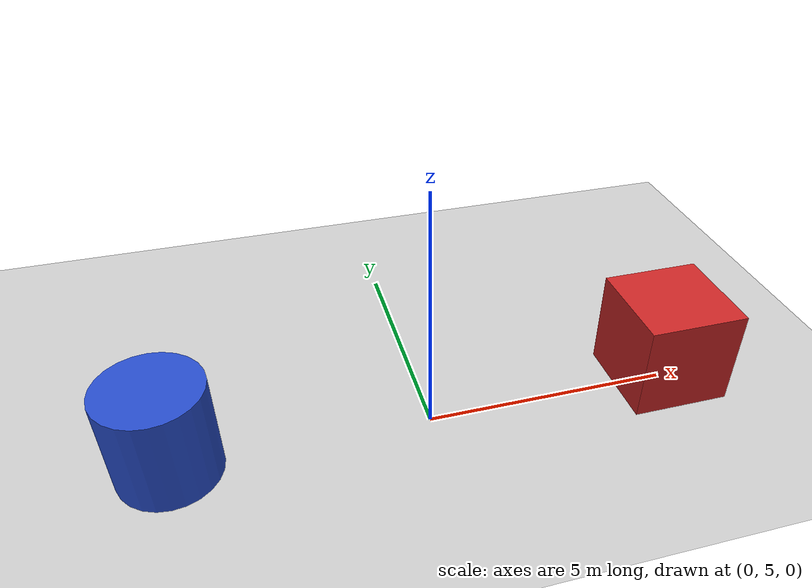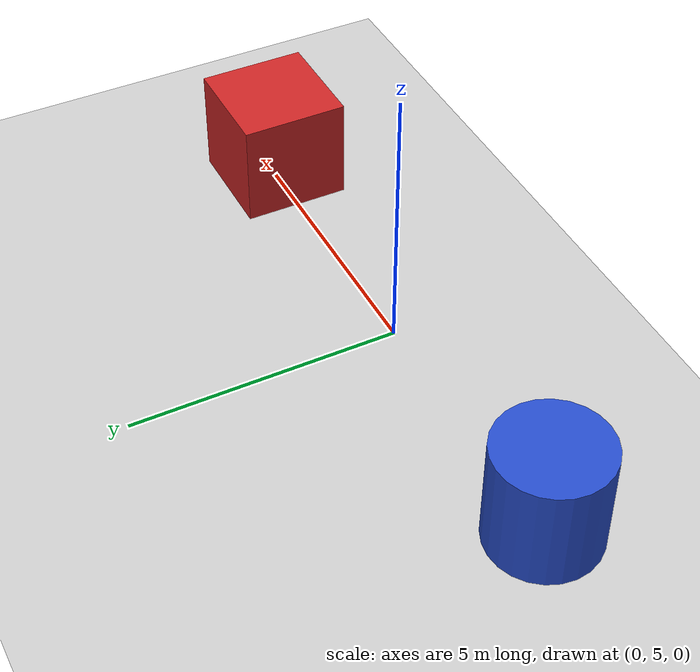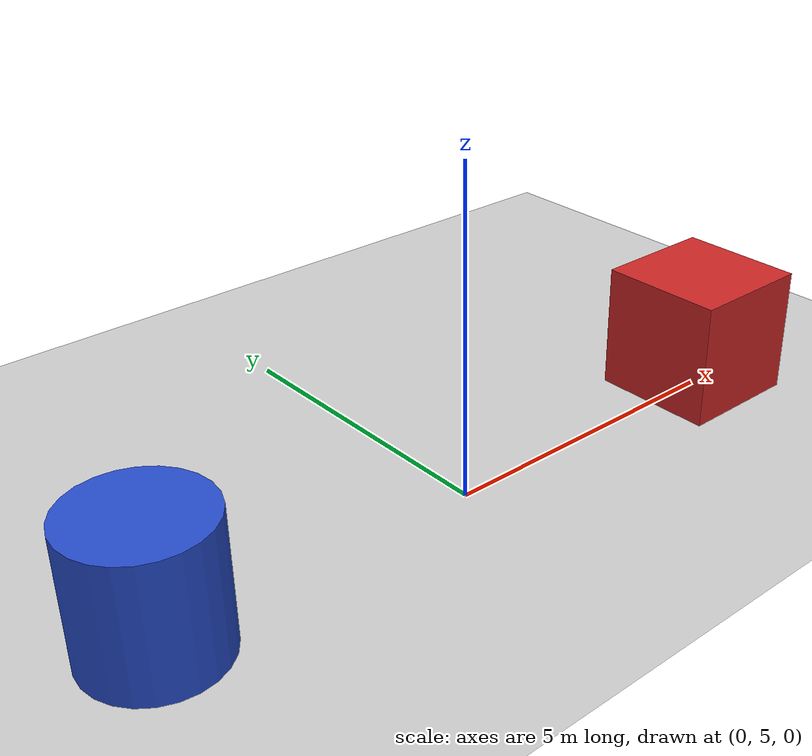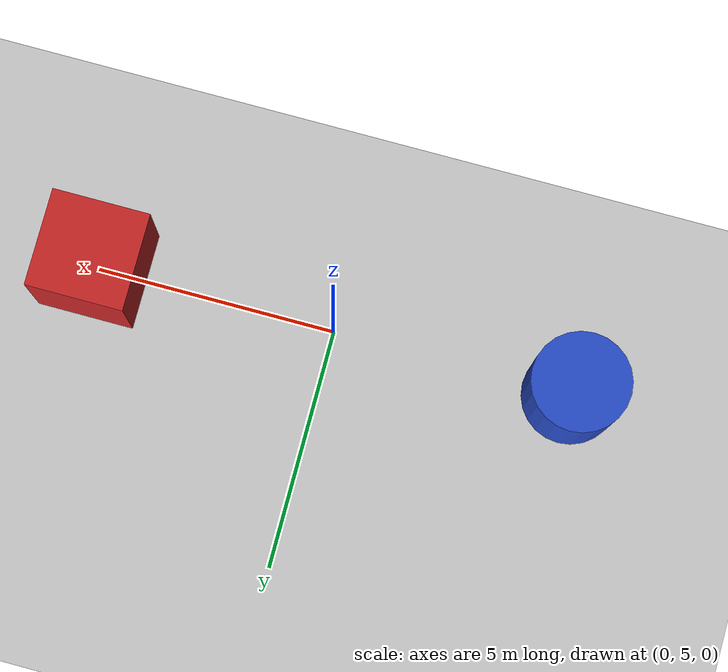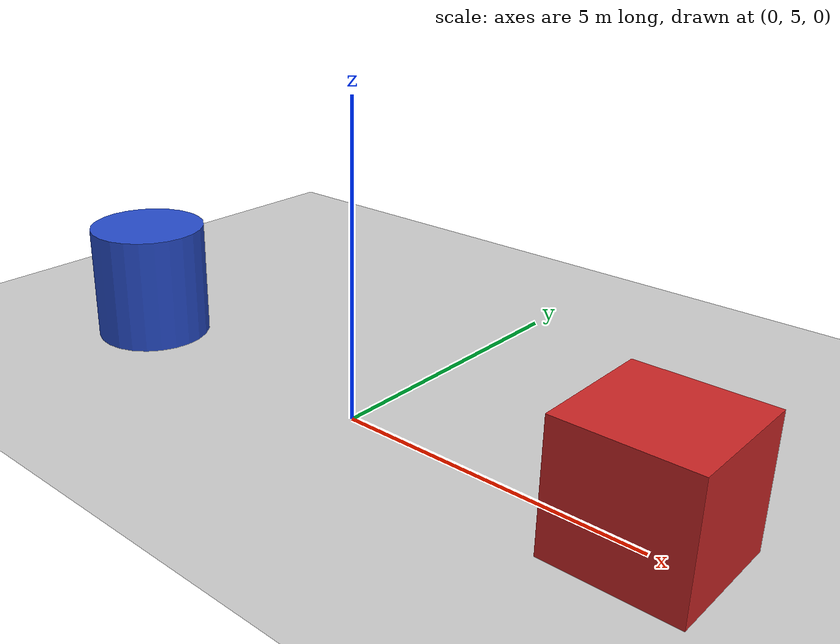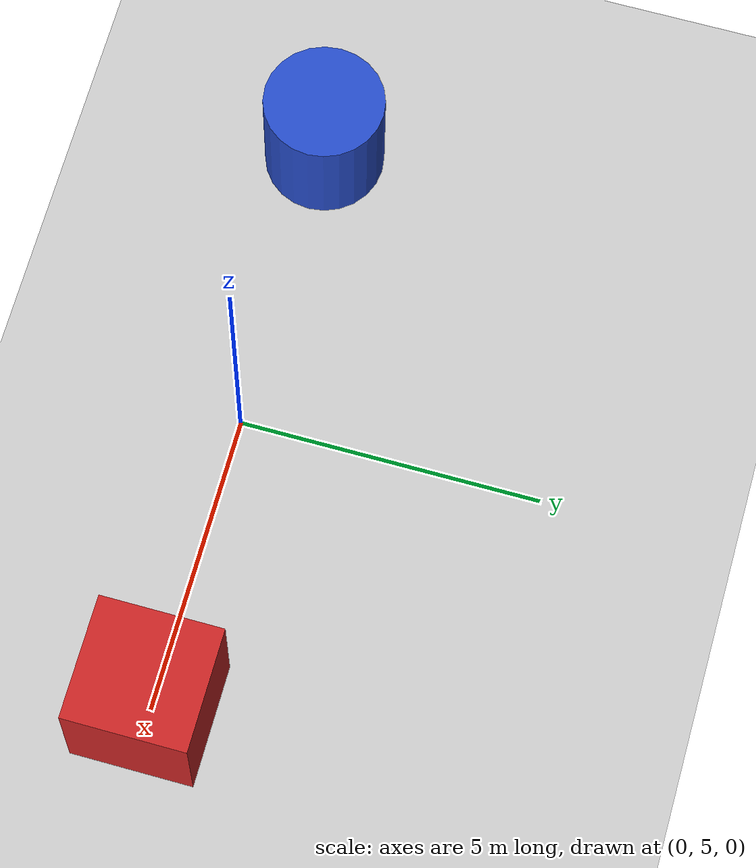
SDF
<?xml version="1.0" ?>
<sdf version="1.6">
  <world name="hermes_world">
    <!-- Sun -->
    <include>
      <uri>model://sun</uri>
    </include>

    <!-- Ground Plane -->
    <include>
      <uri>model://ground_plane</uri>
    </include>

    <!-- Physics -->
    <physics type="ode">
      <max_step_size>0.004</max_step_size>
      <real_time_factor>1.0</real_time_factor>
      <real_time_update_rate>250</real_time_update_rate>
    </physics>

    <!-- Obstacles -->
    <model name="box_obstacle_1">
      <pose>5 5 1 0 0 0</pose>
      <static>true</static>
      <link name="link">
        <collision name="collision">
          <geometry>
            <box>
              <size>2 2 2</size>
            </box>
          </geometry>
        </collision>
        <visual name="visual">
          <geometry>
            <box>
              <size>2 2 2</size>
            </box>
          </geometry>
          <material>
            <script>
              <uri>file://media/materials/scripts/gazebo.material</uri>
              <name>Gazebo/Red</name>
            </script>
          </material>
        </visual>
      </link>
    </model>

    <model name="cylinder_obstacle_1">
      <pose>-5 5 1 0 0 0</pose>
      <static>true</static>
      <link name="link">
        <collision name="collision">
          <geometry>
            <cylinder>
              <radius>1</radius>
              <length>2</length>
            </cylinder>
          </geometry>
        </collision>
        <visual name="visual">
          <geometry>
            <cylinder>
              <radius>1</radius>
              <length>2</length>
            </cylinder>
          </geometry>
          <material>
            <script>
              <uri>file://media/materials/scripts/gazebo.material</uri>
              <name>Gazebo/Blue</name>
            </script>
          </material>
        </visual>
      </link>
    </model>

  </world>
</sdf>
